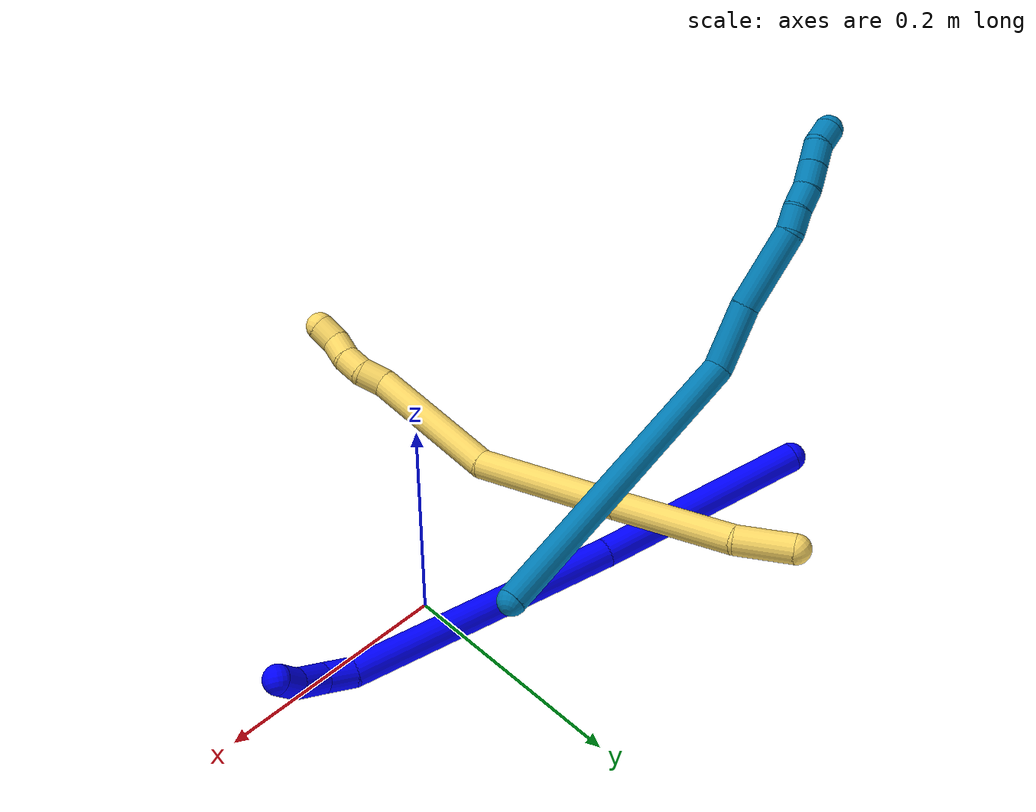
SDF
<sdf version="1.7">
 <world name="default">
  <model name="photoneo_s_sensor">
   <static>1</static>
   <pose>0 0 2 1.57079 1.57079 3.14159</pose>
   <link name="link">
    <inertial><mass>0.1</mass></inertial>
    <sensor name="sensor" type="depth">
     <update_rate>30</update_rate>
     <camera>
      <horizontal_fov>1.22</horizontal_fov>
      <image><width>1920</width><height>1200</height><format>B8G8R8</format></image>
      <clip><near>0.1</near><far>4</far></clip>
      <depth_camera><output>points</output></depth_camera>
     </camera>
     <plugin name="camera_plugin" filename="libgazebo_ros_depth_camera.so">
      <baseline>0.2</baseline>
      <alwaysOn>1</alwaysOn>
      <updateRate>0.0</updateRate>
      <cameraName>camera_ir</cameraName>
      <imageTopicName>/camera/color/image_raw</imageTopicName>
      <cameraInfoTopicName>/camera/color/camera_info</cameraInfoTopicName>
      <depthImageTopicName>/camera/depth/image_raw</depthImageTopicName>
      <depthImageCameraInfoTopicName>/camera/depth/camera_info</depthImageCameraInfoTopicName>
      <pointCloudTopicName>/camera/depth/points</pointCloudTopicName>
      <frameName>fr_optical</frameName>
      <pointCloudCutoff>0.1</pointCloudCutoff>
      <pointCloudCutoffMax>2.0</pointCloudCutoffMax>
      <distortionK1>0</distortionK1>
      <distortionK2>0</distortionK2>
      <distortionK3>0</distortionK3>
      <distortionT1>0</distortionT1>
      <distortionT2>0</distortionT2>
      <CxPrime>0</CxPrime>
      <Cx>0</Cx>
      <Cy>0</Cy>
      <focalLength>0</focalLength>
      <hackBaseline>0</hackBaseline>
     </plugin>
    </sensor>
   </link>
  </model>
  <model name="bin">
   <static>1</static>
   <link name="bottom">
    <collision name="collision-bottom">
     <pose>0 0 -0.01 0 -0 0</pose>
     <geometry><box><size>0.8 0.6 0.02</size></box></geometry>
     <surface>
      <friction><ode><mu>100</mu><mu2>100</mu2></ode></friction>
      <contact><collide_bitmask>65535</collide_bitmask></contact>
     </surface>
    </collision>
   </link>
   <link name="west_wall">
    <collision name="collision-west_wall">
     <pose>-0.41 0 0.1 0 -0 0</pose>
     <geometry><box><size>0.02 0.6 0.2</size></box></geometry>
     <surface>
      <friction><ode><mu>100</mu><mu2>100</mu2></ode></friction>
      <contact><collide_bitmask>65535</collide_bitmask></contact>
     </surface>
    </collision>
   </link>
   <link name="east_wall">
    <collision name="collision-east_wall">
     <pose>0.41 0 0.1 0 -0 0</pose>
     <geometry><box><size>0.02 0.6 0.2</size></box></geometry>
     <surface>
      <friction><ode><mu>100</mu><mu2>100</mu2></ode></friction>
      <contact><collide_bitmask>65535</collide_bitmask></contact>
     </surface>
    </collision>
   </link>
   <link name="south_wall">
    <collision name="collision-south_wall">
     <pose>0 -0.31 0.1 0 -0 0</pose>
     <geometry><box><size>0.8 0.02 0.2</size></box></geometry>
     <surface>
      <friction><ode><mu>100</mu><mu2>100</mu2></ode></friction>
      <contact><collide_bitmask>65535</collide_bitmask></contact>
     </surface>
    </collision>
   </link>
   <link name="north_wall">
    <collision name="collision-north_wall">
     <pose>0 0.31 0.1 0 -0 0</pose>
     <geometry><box><size>0.8 0.02 0.2</size></box></geometry>
     <surface>
      <friction><ode><mu>100</mu><mu2>100</mu2></ode></friction>
      <contact><collide_bitmask>65535</collide_bitmask></contact>
     </surface>
    </collision>
   </link>
  </model>
  <model name="1">
   <static>0</static>
   <link name="1">
    <collision name="collision-cylinder-e_1_1_4">
     <pose>0.088569 -0.008068 0.028026 0.280296 1.2527 0.203439</pose>
     <geometry><cylinder><radius>0.0125</radius><length>0.186494</length></cylinder></geometry>
     <surface>
      <friction><ode><mu>1.16</mu><mu2>1.16</mu2><slip1>0</slip1><slip2>0</slip2></ode></friction>
      <contact><ode><kp>1e+06</kp><kd>1</kd><max_vel>0</max_vel><min_depth>0.001</min_depth></ode></contact>
     </surface>
    </collision>
    <visual name="visual-cylinder-e_1_1_4">
     <pose>0.088569 -0.008068 0.028026 0.280296 1.2527 0.203439</pose>
     <geometry><cylinder><radius>0.0125</radius><length>0.186494</length></cylinder></geometry>
     <material><ambient>0 0 1 1</ambient></material>
    </visual>
    <collision name="collision-cylinder-e_2_4_5">
     <pose>0.289374 -0.036433 0.089369 0.547164 1.23626 0.393917</pose>
     <geometry><cylinder><radius>0.0125</radius><length>0.237648</length></cylinder></geometry>
     <surface>
      <friction><ode><mu>1.16</mu><mu2>1.16</mu2><slip1>0</slip1><slip2>0</slip2></ode></friction>
      <contact><ode><kp>1e+06</kp><kd>1</kd><max_vel>0</max_vel><min_depth>0.001</min_depth></ode></contact>
     </surface>
    </collision>
    <visual name="visual-cylinder-e_2_4_5">
     <pose>0.289374 -0.036433 0.089369 0.547164 1.23626 0.393917</pose>
     <geometry><cylinder><radius>0.0125</radius><length>0.237648</length></cylinder></geometry>
     <material><ambient>0 0 1 1</ambient></material>
    </visual>
    <collision name="collision-cylinder-e_3_5_6">
     <pose>0.413946 -0.060266 0.123381 1.37671 1.2866 1.10517</pose>
     <geometry><cylinder><radius>0.0125</radius><length>0.025702</length></cylinder></geometry>
     <surface>
      <friction><ode><mu>1.16</mu><mu2>1.16</mu2><slip1>0</slip1><slip2>0</slip2></ode></friction>
      <contact><ode><kp>1e+06</kp><kd>1</kd><max_vel>0</max_vel><min_depth>0.001</min_depth></ode></contact>
     </surface>
    </collision>
    <visual name="visual-cylinder-e_3_5_6">
     <pose>0.413946 -0.060266 0.123381 1.37671 1.2866 1.10517</pose>
     <geometry><cylinder><radius>0.0125</radius><length>0.025702</length></cylinder></geometry>
     <material><ambient>0 0 1 1</ambient></material>
    </visual>
    <collision name="collision-cylinder-e_4_6_7">
     <pose>0.437367 -0.073614 0.126085 1.36886 0.83606 0.695502</pose>
     <geometry><cylinder><radius>0.0125</radius><length>0.02988</length></cylinder></geometry>
     <surface>
      <friction><ode><mu>1.16</mu><mu2>1.16</mu2><slip1>0</slip1><slip2>0</slip2></ode></friction>
      <contact><ode><kp>1e+06</kp><kd>1</kd><max_vel>0</max_vel><min_depth>0.001</min_depth></ode></contact>
     </surface>
    </collision>
    <visual name="visual-cylinder-e_4_6_7">
     <pose>0.437367 -0.073614 0.126085 1.36886 0.83606 0.695502</pose>
     <geometry><cylinder><radius>0.0125</radius><length>0.02988</length></cylinder></geometry>
     <material><ambient>0 0 1 1</ambient></material>
    </visual>
    <collision name="collision-cylinder-e_5_7_2">
     <pose>0.455026 -0.091016 0.126694 1.75317 0.70545 0.832726</pose>
     <geometry><cylinder><radius>0.0125</radius><length>0.020277</length></cylinder></geometry>
     <surface>
      <friction><ode><mu>1.16</mu><mu2>1.16</mu2><slip1>0</slip1><slip2>0</slip2></ode></friction>
      <contact><ode><kp>1e+06</kp><kd>1</kd><max_vel>0</max_vel><min_depth>0.001</min_depth></ode></contact>
     </surface>
    </collision>
    <visual name="visual-cylinder-e_5_7_2">
     <pose>0.455026 -0.091016 0.126694 1.75317 0.70545 0.832726</pose>
     <geometry><cylinder><radius>0.0125</radius><length>0.020277</length></cylinder></geometry>
     <material><ambient>0 0 1 1</ambient></material>
    </visual>
    <collision name="collision-sphere-2">
     <pose>0.4616 -0.098607 0.125294 0 -0 0</pose>
     <geometry><sphere><radius>0.0125</radius></sphere></geometry>
     <surface>
      <friction><ode><mu>1.16</mu><mu2>1.16</mu2><slip1>0</slip1><slip2>0</slip2></ode></friction>
      <contact><ode><kp>1e+06</kp><kd>1</kd><max_vel>0</max_vel><min_depth>0.001</min_depth></ode></contact>
     </surface>
    </collision>
    <visual name="visual-sphere-2">
     <pose>0.4616 -0.098607 0.125294 0 -0 0</pose>
     <geometry><sphere><radius>0.0125</radius></sphere></geometry>
     <material><ambient>0 0 1 1</ambient></material>
    </visual>
    <collision name="collision-sphere-7">
     <pose>0.448453 -0.083426 0.128094 0 -0 0</pose>
     <geometry><sphere><radius>0.0125</radius></sphere></geometry>
     <surface>
      <friction><ode><mu>1.16</mu><mu2>1.16</mu2><slip1>0</slip1><slip2>0</slip2></ode></friction>
      <contact><ode><kp>1e+06</kp><kd>1</kd><max_vel>0</max_vel><min_depth>0.001</min_depth></ode></contact>
     </surface>
    </collision>
    <visual name="visual-sphere-7">
     <pose>0.448453 -0.083426 0.128094 0 -0 0</pose>
     <geometry><sphere><radius>0.0125</radius></sphere></geometry>
     <material><ambient>0 0 1 1</ambient></material>
    </visual>
    <collision name="collision-sphere-6">
     <pose>0.426282 -0.063801 0.124076 0 -0 0</pose>
     <geometry><sphere><radius>0.0125</radius></sphere></geometry>
     <surface>
      <friction><ode><mu>1.16</mu><mu2>1.16</mu2><slip1>0</slip1><slip2>0</slip2></ode></friction>
      <contact><ode><kp>1e+06</kp><kd>1</kd><max_vel>0</max_vel><min_depth>0.001</min_depth></ode></contact>
     </surface>
    </collision>
    <visual name="visual-sphere-6">
     <pose>0.426282 -0.063801 0.124076 0 -0 0</pose>
     <geometry><sphere><radius>0.0125</radius></sphere></geometry>
     <material><ambient>0 0 1 1</ambient></material>
    </visual>
    <collision name="collision-sphere-5">
     <pose>0.401611 -0.05673 0.122686 0 -0 0</pose>
     <geometry><sphere><radius>0.0125</radius></sphere></geometry>
     <surface>
      <friction><ode><mu>1.16</mu><mu2>1.16</mu2><slip1>0</slip1><slip2>0</slip2></ode></friction>
      <contact><ode><kp>1e+06</kp><kd>1</kd><max_vel>0</max_vel><min_depth>0.001</min_depth></ode></contact>
     </surface>
    </collision>
    <visual name="visual-sphere-5">
     <pose>0.401611 -0.05673 0.122686 0 -0 0</pose>
     <geometry><sphere><radius>0.0125</radius></sphere></geometry>
     <material><ambient>0 0 1 1</ambient></material>
    </visual>
    <collision name="collision-sphere-1">
     <geometry><sphere><radius>0.0125</radius></sphere></geometry>
     <surface>
      <friction><ode><mu>1.16</mu><mu2>1.16</mu2><slip1>0</slip1><slip2>0</slip2></ode></friction>
      <contact><ode><kp>1e+06</kp><kd>1</kd><max_vel>0</max_vel><min_depth>0.001</min_depth></ode></contact>
     </surface>
    </collision>
    <visual name="visual-sphere-1">
     <geometry><sphere><radius>0.0125</radius></sphere></geometry>
     <material><ambient>0 0 1 1</ambient></material>
    </visual>
    <collision name="collision-sphere-4">
     <pose>0.177138 -0.016136 0.056051 0 -0 0</pose>
     <geometry><sphere><radius>0.0125</radius></sphere></geometry>
     <surface>
      <friction><ode><mu>1.16</mu><mu2>1.16</mu2><slip1>0</slip1><slip2>0</slip2></ode></friction>
      <contact><ode><kp>1e+06</kp><kd>1</kd><max_vel>0</max_vel><min_depth>0.001</min_depth></ode></contact>
     </surface>
    </collision>
    <visual name="visual-sphere-4">
     <pose>0.177138 -0.016136 0.056051 0 -0 0</pose>
     <geometry><sphere><radius>0.0125</radius></sphere></geometry>
     <material><ambient>0 0 1 1</ambient></material>
    </visual>
    <inertial>
     <pose>0.236442 -0.031514 0.071945 0 -0 0</pose>
     <mass>0.5</mass>
     <inertia>
      <ixx>0.000728</ixx>
      <ixy>0</ixy>
      <ixz>0</ixz>
      <iyy>0.001823</iyy>
      <iyz>0</iyz>
      <izz>-0.001338</izz>
     </inertia>
    </inertial>
   </link>
   <pose>-0.319494 0.111926 0.027124 -2.06381 0.018772 -0.545442</pose>
  </model>
  <model name="5">
   <static>0</static>
   <link name="5">
    <collision name="collision-cylinder-e_1_1_4">
     <pose>-0.000523 -0.023485 0.008274 1.23207 -0.02102 -0.014881</pose>
     <geometry><cylinder><radius>0.0125</radius><length>0.049811</length></cylinder></geometry>
     <surface>
      <friction><ode><mu>1.16</mu><mu2>1.16</mu2><slip1>0</slip1><slip2>0</slip2></ode></friction>
      <contact><ode><kp>1e+06</kp><kd>1</kd><max_vel>0</max_vel><min_depth>0.001</min_depth></ode></contact>
     </surface>
    </collision>
    <visual name="visual-cylinder-e_1_1_4">
     <pose>-0.000523 -0.023485 0.008274 1.23207 -0.02102 -0.014881</pose>
     <geometry><cylinder><radius>0.0125</radius><length>0.049811</length></cylinder></geometry>
     <material><ambient>1 0.858824 0.4 1</ambient></material>
    </visual>
    <collision name="collision-cylinder-e_2_4_5">
     <pose>0.001606 -0.101348 0.020765 1.4934 0.048598 0.044976</pose>
     <geometry><cylinder><radius>0.0125</radius><length>0.109211</length></cylinder></geometry>
     <surface>
      <friction><ode><mu>1.16</mu><mu2>1.16</mu2><slip1>0</slip1><slip2>0</slip2></ode></friction>
      <contact><ode><kp>1e+06</kp><kd>1</kd><max_vel>0</max_vel><min_depth>0.001</min_depth></ode></contact>
     </surface>
    </collision>
    <visual name="visual-cylinder-e_2_4_5">
     <pose>0.001606 -0.101348 0.020765 1.4934 0.048598 0.044976</pose>
     <geometry><cylinder><radius>0.0125</radius><length>0.109211</length></cylinder></geometry>
     <material><ambient>1 0.858824 0.4 1</ambient></material>
    </visual>
    <collision name="collision-cylinder-e_3_5_6">
     <pose>0.006088 -0.221876 0.030533 1.48708 0.027555 0.02534</pose>
     <geometry><cylinder><radius>0.0125</radius><length>0.132816</length></cylinder></geometry>
     <surface>
      <friction><ode><mu>1.16</mu><mu2>1.16</mu2><slip1>0</slip1><slip2>0</slip2></ode></friction>
      <contact><ode><kp>1e+06</kp><kd>1</kd><max_vel>0</max_vel><min_depth>0.001</min_depth></ode></contact>
     </surface>
    </collision>
    <visual name="visual-cylinder-e_3_5_6">
     <pose>0.006088 -0.221876 0.030533 1.48708 0.027555 0.02534</pose>
     <geometry><cylinder><radius>0.0125</radius><length>0.132816</length></cylinder></geometry>
     <material><ambient>1 0.858824 0.4 1</ambient></material>
    </visual>
    <collision name="collision-cylinder-e_4_6_7">
     <pose>-0.004991 -0.347968 0.02569 1.74248 -0.20909 -0.248093</pose>
     <geometry><cylinder><radius>0.0125</radius><length>0.12438</length></cylinder></geometry>
     <surface>
      <friction><ode><mu>1.16</mu><mu2>1.16</mu2><slip1>0</slip1><slip2>0</slip2></ode></friction>
      <contact><ode><kp>1e+06</kp><kd>1</kd><max_vel>0</max_vel><min_depth>0.001</min_depth></ode></contact>
     </surface>
    </collision>
    <visual name="visual-cylinder-e_4_6_7">
     <pose>-0.004991 -0.347968 0.02569 1.74248 -0.20909 -0.248093</pose>
     <geometry><cylinder><radius>0.0125</radius><length>0.12438</length></cylinder></geometry>
     <material><ambient>1 0.858824 0.4 1</ambient></material>
    </visual>
    <collision name="collision-cylinder-e_5_7_8">
     <pose>-0.021732 -0.418259 0.01758 1.35367 -0.346911 -0.279714</pose>
     <geometry><cylinder><radius>0.0125</radius><length>0.022539</length></cylinder></geometry>
     <surface>
      <friction><ode><mu>1.16</mu><mu2>1.16</mu2><slip1>0</slip1><slip2>0</slip2></ode></friction>
      <contact><ode><kp>1e+06</kp><kd>1</kd><max_vel>0</max_vel><min_depth>0.001</min_depth></ode></contact>
     </surface>
    </collision>
    <visual name="visual-cylinder-e_5_7_8">
     <pose>-0.021732 -0.418259 0.01758 1.35367 -0.346911 -0.279714</pose>
     <geometry><cylinder><radius>0.0125</radius><length>0.022539</length></cylinder></geometry>
     <material><ambient>1 0.858824 0.4 1</ambient></material>
    </visual>
    <collision name="collision-cylinder-e_6_8_9">
     <pose>-0.028405 -0.438414 0.018424 1.71656 -0.279262 -0.322543</pose>
     <geometry><cylinder><radius>0.0125</radius><length>0.020621</length></cylinder></geometry>
     <surface>
      <friction><ode><mu>1.16</mu><mu2>1.16</mu2><slip1>0</slip1><slip2>0</slip2></ode></friction>
      <contact><ode><kp>1e+06</kp><kd>1</kd><max_vel>0</max_vel><min_depth>0.001</min_depth></ode></contact>
     </surface>
    </collision>
    <visual name="visual-cylinder-e_6_8_9">
     <pose>-0.028405 -0.438414 0.018424 1.71656 -0.279262 -0.322543</pose>
     <geometry><cylinder><radius>0.0125</radius><length>0.020621</length></cylinder></geometry>
     <material><ambient>1 0.858824 0.4 1</ambient></material>
    </visual>
    <collision name="collision-cylinder-e_7_9_10">
     <pose>-0.034468 -0.457047 0.012992 1.99555 -0.32102 -0.491685</pose>
     <geometry><cylinder><radius>0.0125</radius><length>0.020418</length></cylinder></geometry>
     <surface>
      <friction><ode><mu>1.16</mu><mu2>1.16</mu2><slip1>0</slip1><slip2>0</slip2></ode></friction>
      <contact><ode><kp>1e+06</kp><kd>1</kd><max_vel>0</max_vel><min_depth>0.001</min_depth></ode></contact>
     </surface>
    </collision>
    <visual name="visual-cylinder-e_7_9_10">
     <pose>-0.034468 -0.457047 0.012992 1.99555 -0.32102 -0.491685</pose>
     <geometry><cylinder><radius>0.0125</radius><length>0.020418</length></cylinder></geometry>
     <material><ambient>1 0.858824 0.4 1</ambient></material>
    </visual>
    <collision name="collision-cylinder-e_8_10_2">
     <pose>-0.042279 -0.474831 0.008141 1.66633 -0.471639 -0.517004</pose>
     <geometry><cylinder><radius>0.0125</radius><length>0.020203</length></cylinder></geometry>
     <surface>
      <friction><ode><mu>1.16</mu><mu2>1.16</mu2><slip1>0</slip1><slip2>0</slip2></ode></friction>
      <contact><ode><kp>1e+06</kp><kd>1</kd><max_vel>0</max_vel><min_depth>0.001</min_depth></ode></contact>
     </surface>
    </collision>
    <visual name="visual-cylinder-e_8_10_2">
     <pose>-0.042279 -0.474831 0.008141 1.66633 -0.471639 -0.517004</pose>
     <geometry><cylinder><radius>0.0125</radius><length>0.020203</length></cylinder></geometry>
     <material><ambient>1 0.858824 0.4 1</ambient></material>
    </visual>
    <collision name="collision-sphere-2">
     <pose>-0.046869 -0.483789 0.007283 0 -0 0</pose>
     <geometry><sphere><radius>0.0125</radius></sphere></geometry>
     <surface>
      <friction><ode><mu>1.16</mu><mu2>1.16</mu2><slip1>0</slip1><slip2>0</slip2></ode></friction>
      <contact><ode><kp>1e+06</kp><kd>1</kd><max_vel>0</max_vel><min_depth>0.001</min_depth></ode></contact>
     </surface>
    </collision>
    <visual name="visual-sphere-2">
     <pose>-0.046869 -0.483789 0.007283 0 -0 0</pose>
     <geometry><sphere><radius>0.0125</radius></sphere></geometry>
     <material><ambient>1 0.858824 0.4 1</ambient></material>
    </visual>
    <collision name="collision-sphere-10">
     <pose>-0.03769 -0.465873 0.009 0 -0 0</pose>
     <geometry><sphere><radius>0.0125</radius></sphere></geometry>
     <surface>
      <friction><ode><mu>1.16</mu><mu2>1.16</mu2><slip1>0</slip1><slip2>0</slip2></ode></friction>
      <contact><ode><kp>1e+06</kp><kd>1</kd><max_vel>0</max_vel><min_depth>0.001</min_depth></ode></contact>
     </surface>
    </collision>
    <visual name="visual-sphere-10">
     <pose>-0.03769 -0.465873 0.009 0 -0 0</pose>
     <geometry><sphere><radius>0.0125</radius></sphere></geometry>
     <material><ambient>1 0.858824 0.4 1</ambient></material>
    </visual>
    <collision name="collision-sphere-9">
     <pose>-0.031247 -0.44822 0.016984 0 -0 0</pose>
     <geometry><sphere><radius>0.0125</radius></sphere></geometry>
     <surface>
      <friction><ode><mu>1.16</mu><mu2>1.16</mu2><slip1>0</slip1><slip2>0</slip2></ode></friction>
      <contact><ode><kp>1e+06</kp><kd>1</kd><max_vel>0</max_vel><min_depth>0.001</min_depth></ode></contact>
     </surface>
    </collision>
    <visual name="visual-sphere-9">
     <pose>-0.031247 -0.44822 0.016984 0 -0 0</pose>
     <geometry><sphere><radius>0.0125</radius></sphere></geometry>
     <material><ambient>1 0.858824 0.4 1</ambient></material>
    </visual>
    <collision name="collision-sphere-4">
     <pose>-0.001047 -0.04697 0.016548 0 -0 0</pose>
     <geometry><sphere><radius>0.0125</radius></sphere></geometry>
     <surface>
      <friction><ode><mu>1.16</mu><mu2>1.16</mu2><slip1>0</slip1><slip2>0</slip2></ode></friction>
      <contact><ode><kp>1e+06</kp><kd>1</kd><max_vel>0</max_vel><min_depth>0.001</min_depth></ode></contact>
     </surface>
    </collision>
    <visual name="visual-sphere-4">
     <pose>-0.001047 -0.04697 0.016548 0 -0 0</pose>
     <geometry><sphere><radius>0.0125</radius></sphere></geometry>
     <material><ambient>1 0.858824 0.4 1</ambient></material>
    </visual>
    <collision name="collision-sphere-1">
     <geometry><sphere><radius>0.0125</radius></sphere></geometry>
     <surface>
      <friction><ode><mu>1.16</mu><mu2>1.16</mu2><slip1>0</slip1><slip2>0</slip2></ode></friction>
      <contact><ode><kp>1e+06</kp><kd>1</kd><max_vel>0</max_vel><min_depth>0.001</min_depth></ode></contact>
     </surface>
    </collision>
    <visual name="visual-sphere-1">
     <geometry><sphere><radius>0.0125</radius></sphere></geometry>
     <material><ambient>1 0.858824 0.4 1</ambient></material>
    </visual>
    <collision name="collision-sphere-8">
     <pose>-0.025563 -0.428608 0.019863 0 -0 0</pose>
     <geometry><sphere><radius>0.0125</radius></sphere></geometry>
     <surface>
      <friction><ode><mu>1.16</mu><mu2>1.16</mu2><slip1>0</slip1><slip2>0</slip2></ode></friction>
      <contact><ode><kp>1e+06</kp><kd>1</kd><max_vel>0</max_vel><min_depth>0.001</min_depth></ode></contact>
     </surface>
    </collision>
    <visual name="visual-sphere-8">
     <pose>-0.025563 -0.428608 0.019863 0 -0 0</pose>
     <geometry><sphere><radius>0.0125</radius></sphere></geometry>
     <material><ambient>1 0.858824 0.4 1</ambient></material>
    </visual>
    <collision name="collision-sphere-5">
     <pose>0.004258 -0.155726 0.024982 0 -0 0</pose>
     <geometry><sphere><radius>0.0125</radius></sphere></geometry>
     <surface>
      <friction><ode><mu>1.16</mu><mu2>1.16</mu2><slip1>0</slip1><slip2>0</slip2></ode></friction>
      <contact><ode><kp>1e+06</kp><kd>1</kd><max_vel>0</max_vel><min_depth>0.001</min_depth></ode></contact>
     </surface>
    </collision>
    <visual name="visual-sphere-5">
     <pose>0.004258 -0.155726 0.024982 0 -0 0</pose>
     <geometry><sphere><radius>0.0125</radius></sphere></geometry>
     <material><ambient>1 0.858824 0.4 1</ambient></material>
    </visual>
    <collision name="collision-sphere-6">
     <pose>0.007918 -0.288027 0.036083 0 -0 0</pose>
     <geometry><sphere><radius>0.0125</radius></sphere></geometry>
     <surface>
      <friction><ode><mu>1.16</mu><mu2>1.16</mu2><slip1>0</slip1><slip2>0</slip2></ode></friction>
      <contact><ode><kp>1e+06</kp><kd>1</kd><max_vel>0</max_vel><min_depth>0.001</min_depth></ode></contact>
     </surface>
    </collision>
    <visual name="visual-sphere-6">
     <pose>0.007918 -0.288027 0.036083 0 -0 0</pose>
     <geometry><sphere><radius>0.0125</radius></sphere></geometry>
     <material><ambient>1 0.858824 0.4 1</ambient></material>
    </visual>
    <collision name="collision-sphere-7">
     <pose>-0.0179 -0.407909 0.015297 0 -0 0</pose>
     <geometry><sphere><radius>0.0125</radius></sphere></geometry>
     <surface>
      <friction><ode><mu>1.16</mu><mu2>1.16</mu2><slip1>0</slip1><slip2>0</slip2></ode></friction>
      <contact><ode><kp>1e+06</kp><kd>1</kd><max_vel>0</max_vel><min_depth>0.001</min_depth></ode></contact>
     </surface>
    </collision>
    <visual name="visual-sphere-7">
     <pose>-0.0179 -0.407909 0.015297 0 -0 0</pose>
     <geometry><sphere><radius>0.0125</radius></sphere></geometry>
     <material><ambient>1 0.858824 0.4 1</ambient></material>
    </visual>
    <inertial>
     <pose>-0.004593 -0.24476 0.022273 0 -0 0</pose>
     <mass>0.5</mass>
     <inertia>
      <ixx>0.000452</ixx>
      <ixy>0</ixy>
      <ixz>0</ixz>
      <iyy>-5.9e-05</iyy>
      <iyz>0</iyz>
      <izz>0.000515</izz>
     </inertia>
    </inertial>
   </link>
   <pose>-0.203652 0.214251 0.081895 1.40231 1.42854 1.56816</pose>
  </model>
  <model name="9">
   <static>0</static>
   <link name="9">
    <collision name="collision-cylinder-e_1_1_4">
     <pose>-0.045522 -0.022286 0.12473 0.176809 -0.34491 -0.030876</pose>
     <geometry><cylinder><radius>0.0125</radius><length>0.269269</length></cylinder></geometry>
     <surface>
      <friction><ode><mu>1.16</mu><mu2>1.16</mu2><slip1>0</slip1><slip2>0</slip2></ode></friction>
      <contact><ode><kp>1e+06</kp><kd>1</kd><max_vel>0</max_vel><min_depth>0.001</min_depth></ode></contact>
     </surface>
    </collision>
    <visual name="visual-cylinder-e_1_1_4">
     <pose>-0.045522 -0.022286 0.12473 0.176809 -0.34491 -0.030876</pose>
     <geometry><cylinder><radius>0.0125</radius><length>0.269269</length></cylinder></geometry>
     <material><ambient>0 0.490196 0.709804 1</ambient></material>
    </visual>
    <collision name="collision-cylinder-e_2_4_5">
     <pose>-0.105561 -0.037057 0.272481 -0.315553 -0.540069 0.088019</pose>
     <geometry><cylinder><radius>0.0125</radius><length>0.056469</length></cylinder></geometry>
     <surface>
      <friction><ode><mu>1.16</mu><mu2>1.16</mu2><slip1>0</slip1><slip2>0</slip2></ode></friction>
      <contact><ode><kp>1e+06</kp><kd>1</kd><max_vel>0</max_vel><min_depth>0.001</min_depth></ode></contact>
     </surface>
    </collision>
    <visual name="visual-cylinder-e_2_4_5">
     <pose>-0.105561 -0.037057 0.272481 -0.315553 -0.540069 0.088019</pose>
     <geometry><cylinder><radius>0.0125</radius><length>0.056469</length></cylinder></geometry>
     <material><ambient>0 0.490196 0.709804 1</ambient></material>
    </visual>
    <collision name="collision-cylinder-e_3_5_6">
     <pose>-0.142945 -0.023062 0.322163 -0.238408 -0.694749 0.086674</pose>
     <geometry><cylinder><radius>0.0125</radius><length>0.071433</length></cylinder></geometry>
     <surface>
      <friction><ode><mu>1.16</mu><mu2>1.16</mu2><slip1>0</slip1><slip2>0</slip2></ode></friction>
      <contact><ode><kp>1e+06</kp><kd>1</kd><max_vel>0</max_vel><min_depth>0.001</min_depth></ode></contact>
     </surface>
    </collision>
    <visual name="visual-cylinder-e_3_5_6">
     <pose>-0.142945 -0.023062 0.322163 -0.238408 -0.694749 0.086674</pose>
     <geometry><cylinder><radius>0.0125</radius><length>0.071433</length></cylinder></geometry>
     <material><ambient>0 0.490196 0.709804 1</ambient></material>
    </visual>
    <collision name="collision-cylinder-e_4_6_7">
     <pose>-0.169673 -0.013489 0.357973 -0.32603 -0.380527 0.063332</pose>
     <geometry><cylinder><radius>0.0125</radius><length>0.020803</length></cylinder></geometry>
     <surface>
      <friction><ode><mu>1.16</mu><mu2>1.16</mu2><slip1>0</slip1><slip2>0</slip2></ode></friction>
      <contact><ode><kp>1e+06</kp><kd>1</kd><max_vel>0</max_vel><min_depth>0.001</min_depth></ode></contact>
     </surface>
    </collision>
    <visual name="visual-cylinder-e_4_6_7">
     <pose>-0.169673 -0.013489 0.357973 -0.32603 -0.380527 0.063332</pose>
     <geometry><cylinder><radius>0.0125</radius><length>0.020803</length></cylinder></geometry>
     <material><ambient>0 0.490196 0.709804 1</ambient></material>
    </visual>
    <collision name="collision-cylinder-e_5_7_8">
     <pose>-0.176778 -0.00926 0.376626 -0.118997 -0.326535 0.019625</pose>
     <geometry><cylinder><radius>0.0125</radius><length>0.020211</length></cylinder></geometry>
     <surface>
      <friction><ode><mu>1.16</mu><mu2>1.16</mu2><slip1>0</slip1><slip2>0</slip2></ode></friction>
      <contact><ode><kp>1e+06</kp><kd>1</kd><max_vel>0</max_vel><min_depth>0.001</min_depth></ode></contact>
     </surface>
    </collision>
    <visual name="visual-cylinder-e_5_7_8">
     <pose>-0.176778 -0.00926 0.376626 -0.118997 -0.326535 0.019625</pose>
     <geometry><cylinder><radius>0.0125</radius><length>0.020211</length></cylinder></geometry>
     <material><ambient>0 0.490196 0.709804 1</ambient></material>
    </visual>
    <collision name="collision-cylinder-e_6_8_9">
     <pose>-0.182295 -0.005464 0.396293 -0.255993 -0.213335 0.027559</pose>
     <geometry><cylinder><radius>0.0125</radius><length>0.021499</length></cylinder></geometry>
     <surface>
      <friction><ode><mu>1.16</mu><mu2>1.16</mu2><slip1>0</slip1><slip2>0</slip2></ode></friction>
      <contact><ode><kp>1e+06</kp><kd>1</kd><max_vel>0</max_vel><min_depth>0.001</min_depth></ode></contact>
     </surface>
    </collision>
    <visual name="visual-cylinder-e_6_8_9">
     <pose>-0.182295 -0.005464 0.396293 -0.255993 -0.213335 0.027559</pose>
     <geometry><cylinder><radius>0.0125</radius><length>0.021499</length></cylinder></geometry>
     <material><ambient>0 0.490196 0.709804 1</ambient></material>
    </visual>
    <collision name="collision-cylinder-e_7_9_10">
     <pose>-0.18648 -0.000332 0.416117 -0.250418 -0.189152 0.023878</pose>
     <geometry><cylinder><radius>0.0125</radius><length>0.020305</length></cylinder></geometry>
     <surface>
      <friction><ode><mu>1.16</mu><mu2>1.16</mu2><slip1>0</slip1><slip2>0</slip2></ode></friction>
      <contact><ode><kp>1e+06</kp><kd>1</kd><max_vel>0</max_vel><min_depth>0.001</min_depth></ode></contact>
     </surface>
    </collision>
    <visual name="visual-cylinder-e_7_9_10">
     <pose>-0.18648 -0.000332 0.416117 -0.250418 -0.189152 0.023878</pose>
     <geometry><cylinder><radius>0.0125</radius><length>0.020305</length></cylinder></geometry>
     <material><ambient>0 0.490196 0.709804 1</ambient></material>
    </visual>
    <collision name="collision-cylinder-e_8_10_2">
     <pose>-0.190009 0.001022 0.435587 0.113387 -0.16268 -0.009253</pose>
     <geometry><cylinder><radius>0.0125</radius><length>0.020011</length></cylinder></geometry>
     <surface>
      <friction><ode><mu>1.16</mu><mu2>1.16</mu2><slip1>0</slip1><slip2>0</slip2></ode></friction>
      <contact><ode><kp>1e+06</kp><kd>1</kd><max_vel>0</max_vel><min_depth>0.001</min_depth></ode></contact>
     </surface>
    </collision>
    <visual name="visual-cylinder-e_8_10_2">
     <pose>-0.190009 0.001022 0.435587 0.113387 -0.16268 -0.009253</pose>
     <geometry><cylinder><radius>0.0125</radius><length>0.020011</length></cylinder></geometry>
     <material><ambient>0 0.490196 0.709804 1</ambient></material>
    </visual>
    <collision name="collision-sphere-2">
     <pose>-0.19163 -9.6e-05 0.445397 0 -0 0</pose>
     <geometry><sphere><radius>0.0125</radius></sphere></geometry>
     <surface>
      <friction><ode><mu>1.16</mu><mu2>1.16</mu2><slip1>0</slip1><slip2>0</slip2></ode></friction>
      <contact><ode><kp>1e+06</kp><kd>1</kd><max_vel>0</max_vel><min_depth>0.001</min_depth></ode></contact>
     </surface>
    </collision>
    <visual name="visual-sphere-2">
     <pose>-0.19163 -9.6e-05 0.445397 0 -0 0</pose>
     <geometry><sphere><radius>0.0125</radius></sphere></geometry>
     <material><ambient>0 0.490196 0.709804 1</ambient></material>
    </visual>
    <collision name="collision-sphere-10">
     <pose>-0.188389 0.002139 0.425777 0 -0 0</pose>
     <geometry><sphere><radius>0.0125</radius></sphere></geometry>
     <surface>
      <friction><ode><mu>1.16</mu><mu2>1.16</mu2><slip1>0</slip1><slip2>0</slip2></ode></friction>
      <contact><ode><kp>1e+06</kp><kd>1</kd><max_vel>0</max_vel><min_depth>0.001</min_depth></ode></contact>
     </surface>
    </collision>
    <visual name="visual-sphere-10">
     <pose>-0.188389 0.002139 0.425777 0 -0 0</pose>
     <geometry><sphere><radius>0.0125</radius></sphere></geometry>
     <material><ambient>0 0.490196 0.709804 1</ambient></material>
    </visual>
    <collision name="collision-sphere-9">
     <pose>-0.184571 -0.002803 0.406457 0 -0 0</pose>
     <geometry><sphere><radius>0.0125</radius></sphere></geometry>
     <surface>
      <friction><ode><mu>1.16</mu><mu2>1.16</mu2><slip1>0</slip1><slip2>0</slip2></ode></friction>
      <contact><ode><kp>1e+06</kp><kd>1</kd><max_vel>0</max_vel><min_depth>0.001</min_depth></ode></contact>
     </surface>
    </collision>
    <visual name="visual-sphere-9">
     <pose>-0.184571 -0.002803 0.406457 0 -0 0</pose>
     <geometry><sphere><radius>0.0125</radius></sphere></geometry>
     <material><ambient>0 0.490196 0.709804 1</ambient></material>
    </visual>
    <collision name="collision-sphere-4">
     <pose>-0.091043 -0.044572 0.24946 0 -0 0</pose>
     <geometry><sphere><radius>0.0125</radius></sphere></geometry>
     <surface>
      <friction><ode><mu>1.16</mu><mu2>1.16</mu2><slip1>0</slip1><slip2>0</slip2></ode></friction>
      <contact><ode><kp>1e+06</kp><kd>1</kd><max_vel>0</max_vel><min_depth>0.001</min_depth></ode></contact>
     </surface>
    </collision>
    <visual name="visual-sphere-4">
     <pose>-0.091043 -0.044572 0.24946 0 -0 0</pose>
     <geometry><sphere><radius>0.0125</radius></sphere></geometry>
     <material><ambient>0 0.490196 0.709804 1</ambient></material>
    </visual>
    <collision name="collision-sphere-1">
     <geometry><sphere><radius>0.0125</radius></sphere></geometry>
     <surface>
      <friction><ode><mu>1.16</mu><mu2>1.16</mu2><slip1>0</slip1><slip2>0</slip2></ode></friction>
      <contact><ode><kp>1e+06</kp><kd>1</kd><max_vel>0</max_vel><min_depth>0.001</min_depth></ode></contact>
     </surface>
    </collision>
    <visual name="visual-sphere-1">
     <geometry><sphere><radius>0.0125</radius></sphere></geometry>
     <material><ambient>0 0.490196 0.709804 1</ambient></material>
    </visual>
    <collision name="collision-sphere-8">
     <pose>-0.180019 -0.008124 0.38613 0 -0 0</pose>
     <geometry><sphere><radius>0.0125</radius></sphere></geometry>
     <surface>
      <friction><ode><mu>1.16</mu><mu2>1.16</mu2><slip1>0</slip1><slip2>0</slip2></ode></friction>
      <contact><ode><kp>1e+06</kp><kd>1</kd><max_vel>0</max_vel><min_depth>0.001</min_depth></ode></contact>
     </surface>
    </collision>
    <visual name="visual-sphere-8">
     <pose>-0.180019 -0.008124 0.38613 0 -0 0</pose>
     <geometry><sphere><radius>0.0125</radius></sphere></geometry>
     <material><ambient>0 0.490196 0.709804 1</ambient></material>
    </visual>
    <collision name="collision-sphere-5">
     <pose>-0.120079 -0.029542 0.295501 0 -0 0</pose>
     <geometry><sphere><radius>0.0125</radius></sphere></geometry>
     <surface>
      <friction><ode><mu>1.16</mu><mu2>1.16</mu2><slip1>0</slip1><slip2>0</slip2></ode></friction>
      <contact><ode><kp>1e+06</kp><kd>1</kd><max_vel>0</max_vel><min_depth>0.001</min_depth></ode></contact>
     </surface>
    </collision>
    <visual name="visual-sphere-5">
     <pose>-0.120079 -0.029542 0.295501 0 -0 0</pose>
     <geometry><sphere><radius>0.0125</radius></sphere></geometry>
     <material><ambient>0 0.490196 0.709804 1</ambient></material>
    </visual>
    <collision name="collision-sphere-6">
     <pose>-0.16581 -0.016583 0.348824 0 -0 0</pose>
     <geometry><sphere><radius>0.0125</radius></sphere></geometry>
     <surface>
      <friction><ode><mu>1.16</mu><mu2>1.16</mu2><slip1>0</slip1><slip2>0</slip2></ode></friction>
      <contact><ode><kp>1e+06</kp><kd>1</kd><max_vel>0</max_vel><min_depth>0.001</min_depth></ode></contact>
     </surface>
    </collision>
    <visual name="visual-sphere-6">
     <pose>-0.16581 -0.016583 0.348824 0 -0 0</pose>
     <geometry><sphere><radius>0.0125</radius></sphere></geometry>
     <material><ambient>0 0.490196 0.709804 1</ambient></material>
    </visual>
    <collision name="collision-sphere-7">
     <pose>-0.173536 -0.010396 0.367122 0 -0 0</pose>
     <geometry><sphere><radius>0.0125</radius></sphere></geometry>
     <surface>
      <friction><ode><mu>1.16</mu><mu2>1.16</mu2><slip1>0</slip1><slip2>0</slip2></ode></friction>
      <contact><ode><kp>1e+06</kp><kd>1</kd><max_vel>0</max_vel><min_depth>0.001</min_depth></ode></contact>
     </surface>
    </collision>
    <visual name="visual-sphere-7">
     <pose>-0.173536 -0.010396 0.367122 0 -0 0</pose>
     <geometry><sphere><radius>0.0125</radius></sphere></geometry>
     <material><ambient>0 0.490196 0.709804 1</ambient></material>
    </visual>
    <inertial>
     <pose>-0.09408 -0.020625 0.22546 0 -0 0</pose>
     <mass>0.5</mass>
     <inertia>
      <ixx>0.001529</ixx>
      <ixy>0</ixy>
      <ixz>0</ixz>
      <iyy>0.001627</iyy>
      <iyz>0</iyz>
      <izz>0.00088</izz>
     </inertia>
    </inertial>
   </link>
   <pose>-0.022223 0.079304 0.054355 1.41725 0.803544 -1.21514</pose>
  </model>
 </world>
</sdf>
